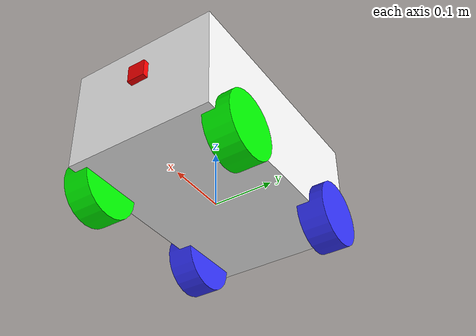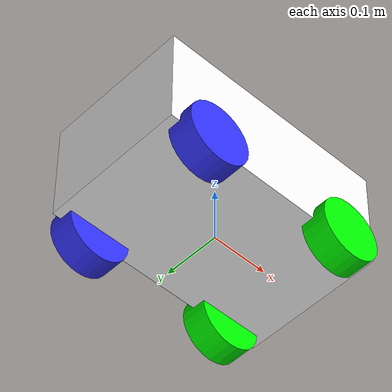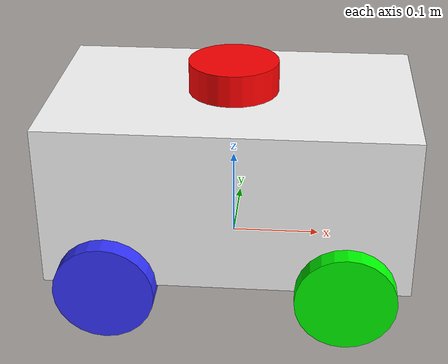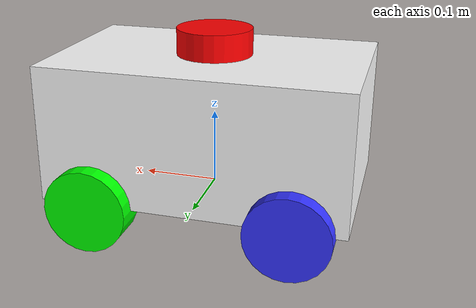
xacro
<?xml version="1.0"?>
<robot xmlns:xacro="http://www.ros.org/wiki/xacro"  name="robot">

    <xacro:include filename="robot_core.xacro" />

    <xacro:include filename="gazebo_control.xacro" />

    <xacro:include filename="camera.xacro" />

    <xacro:include filename="lidar.xacro" />

</robot>

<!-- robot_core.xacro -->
<robot xmlns:xacro="http://www.ros.org/wiki/xacro" >

    <xacro:include filename="inertial_macros.xacro" />

    <material name="white">
        <color rgba="1 1 1 1" />
    </material>

    <material name="orange">
        <color rgba="1 0.3 0.1 1" />
    </material>

    <material name="blue">
        <color rgba="0.2 0.2 1 1" />
    </material>

    <material name="green">
        <color rgba="0 1 0 1" />
    </material>

    <material name="red">
        <color rgba="1 0 0 1" />
    </material>

    <material name="grey">
        <color rgba="0.5 0.5 0.5 1" />
    </material>

    <material name="black">
        <color rgba="0 0 0 1" />
    </material>

    <!-- BASE LINK  -->

    <link name="base_link">
        <static>true</static>
    </link>

    <!-- CHASSIS LINK -->

    <joint name="chassis_joint" type="fixed" >
        <parent link="base_link" />
        <child link="chassis" />
        <origin xyz="-0.2 0 0" />
    </joint>

    <link name="chassis">
        <visual>
            <origin xyz="0.2 0 0.09" />
            <geometry>
                <box size="0.4 0.25 0.18" />
            </geometry>
            <material name="white" />
        </visual>
        <collision>
            <origin xyz="0.2 0 0.09" />
            <geometry>
                <box size="0.4 0.25 0.18" />
            </geometry>
        </collision>
        <xacro:inertial_box mass="5" x="0.4" y="0.25" z="0.18" >
            <origin xyz="0.2 0.125 0.09" rpy="0 0 0" />
        </xacro:inertial_box>
    </link>

    <gazebo reference="chassis" >
        <material>Gazebo/White</material>
    </gazebo>

    <!-- LEFT FRONT WHEEL LINK -->

    <joint name="left_front_wheel_joint" type="continuous" >
        <parent link="base_link" />
        <child link="left_front_wheel" />
        <origin xyz="0.13 0.125 0" rpy="-${pi/2} 0 0" />
        <axis xyz="0 0 1" />
    </joint>

    <link name="left_front_wheel" >
        <visual>
            <geometry>
                <cylinder radius="0.055" length="0.045" />
            </geometry>
            <material name="green" />
        </visual>
        <collision>
            <geometry>
                <cylinder radius="0.055" length="0.045" />
            </geometry>
        </collision>
        <xacro:inertial_cylinder mass="0.1" length="0.045" radius="0.55" >
            <origin xyz="0 0 0" rpy="0 0 0" />
        </xacro:inertial_cylinder>
    </link>

    <gazebo reference="left_front_wheel" >
        <material>Gazebo/Green</material>
        <mu1 value="0.01" />
        <mu2 value="0.01" />
    </gazebo>

    <!-- LEFT BACK WHEEL LINK -->

    <joint name="left_back_wheel_joint" type="continuous" >
        <parent link="base_link" />
        <child link="left_back_wheel" />
        <origin xyz="-0.13 0.125 0" rpy="-${pi/2} 0 0" />
        <axis xyz="0 0 1" />
    </joint>

    <link name="left_back_wheel" >
        <visual>
            <geometry>
                <cylinder radius="0.055" length="0.045" />
            </geometry>
            <material name="blue" />
        </visual>
        <collision>
            <geometry>
                <cylinder radius="0.055" length="0.045" />
            </geometry>
        </collision>
        <xacro:inertial_cylinder mass="0.1" length="0.045" radius="0.55" >
            <origin xyz="0 0 0" rpy="0 0 0" />
        </xacro:inertial_cylinder>
    </link>

    <gazebo reference="left_back_wheel" >
        <material>Gazebo/Blue</material>
     </gazebo>

    <!-- RIGHT FRONT WHEEL LINK -->

    <joint name="right_front_wheel_joint" type="continuous" >
        <parent link="base_link" />
        <child link="right_front_wheel" />
        <origin xyz="0.13 -0.125 0" rpy="${pi/2} 0 0" />
        <axis xyz="0 0 -1" />
    </joint>

    <link name="right_front_wheel" >
        <visual>
            <geometry>
                <cylinder radius="0.055" length="0.045" />
            </geometry>
            <material name="green" />
        </visual>
        <collision>
            <geometry>
                <cylinder radius="0.055" length="0.045" />
            </geometry>
        </collision>
        <xacro:inertial_cylinder mass="0.1" length="0.045" radius="0.55" >
            <origin xyz="0 0 0" rpy="0 0 0" />
        </xacro:inertial_cylinder>
    </link>

    <gazebo reference="right_front_wheel" >
        <material>Gazebo/Green</material>
        <mu1 value="0.01" />
        <mu2 value="0.01" />
    </gazebo>

    <!-- RIGHT BACK WHEEL LINK -->

    <joint name="right_back_wheel_joint" type="continuous" >
        <parent link="base_link" />
        <child link="right_back_wheel" />
        <origin xyz="-0.13 -0.125 0" rpy="${pi/2} 0 0" />
        <axis xyz="0 0 -1" />
    </joint>

    <link name="right_back_wheel" >
        <visual>
            <geometry>
                <cylinder radius="0.055" length="0.045" />
            </geometry>
            <material name="blue" />
        </visual>
        <collision>
            <geometry>
                <cylinder radius="0.055" length="0.045" />
            </geometry>
        </collision>
        <xacro:inertial_cylinder mass="0.1" length="0.045" radius="0.55" >
            <origin xyz="0 0 0" rpy="0 0 0" />
        </xacro:inertial_cylinder>
    </link>

    <gazebo reference="right_back_wheel" >
        <material>Gazebo/Blue</material>
    </gazebo>

</robot>

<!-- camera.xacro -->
<robot xmlns:xacro="http://www.ros.org/wiki/xacro" >

    <joint name="camera_joint" type="fixed">
        <parent link="chassis"/>
        <child link="camera_link"/>
        <origin xyz="0.405 0 0.12" rpy="0 0 0"/>
    </joint>

    <link name="camera_link">
        <visual>
            <geometry>
                <box size="0.01 0.03 0.03"/>
            </geometry>
            <material name="red"/>
        </visual>
    </link>

    <joint name="camera_optical_joint" type="fixed">
        <parent link="camera_link"/>
        <child link="camera_link_optical"/>
        <origin xyz="0 0 0" rpy="${-pi/2} 0 ${-pi/2}"/>
    </joint>

    <link name="camera_link_optical"></link>

    <gazebo reference="camera_link">
        <material>Gazebo/Grey</material>

        <sensor name="camera" type="camera" >
            <pose>0 0 0 0 0 0</pose>
            <visualize>true</visualize>
            <update_rate>10</update_rate>
            <camera>
                <horizontal_fov>1.45</horizontal_fov>
                <image>
                    <format>R8G8B8</format>
                    <width>640</width>
                    <height>480</height>
                </image>
                <clip>
                    <near>0.05</near>
                    <far>10</far>
                </clip>
            </camera>

            <plugin name="camera_controller" filename="libgazebo_ros_camera.so">
                <frameName>camera_link_optical</frameName>
            </plugin>
        </sensor>
    </gazebo>

</robot>

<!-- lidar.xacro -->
<robot xmlns:xacro="http://www.ros.org/wiki/xacro" >

    <joint name="lidar_joint" type="fixed" >
        <parent link="chassis" />
        <child link="lidar_frame" />
        <origin xyz="0.2 0 0.19" rpy="0 0 0" />
    </joint>

    <link name="lidar_frame">
        <visual>
            <geometry>
                <cylinder length="0.05" radius="0.05" />
            </geometry>
            <material name="red" />
        </visual>
        <collision>
            <origin xyz="0 0 0" />
            <geometry>
                <cylinder length="0.05" radius="0.05" />
            </geometry>
        </collision>
        <xacro:inertial_cylinder mass="0.1" length="0.05" radius="0.05" >
            <origin xyz="0 0 0" rpy="0 0 0" />
        </xacro:inertial_cylinder>
    </link>

    <gazebo reference="lidar_frame" >
        <material>Gazebo/Red</material>

        <sensor name="lidar" type="ray" >
            <pose>0 0 0 0 0 0</pose>
            <visualize>true</visualize>
            <update_rate>10</update_rate>
            <ray>
                <scan>
                    <horizontal>
                        <samples>360</samples>
                        <resolution>1</resolution>
                        <min_angle>-3.14</min_angle>
                        <max_angle>3.14</max_angle>
                    </horizontal>
                </scan>
                <range>
                    <min>0.3</min>
                    <max>8</max>
                    <resolution>0.01</resolution>
                </range>
            </ray>
            <plugin name="lidar_controller" filename="libgazebo_ros_ray_sensor.so">
                <ros>
                    <argument>~/out:=scan</argument>
                </ros>
                <topicName>scan</topicName>
                <frameName>lidar_frame</frameName>
                <output_type>sensor_msgs/LaserScan</output_type>
            </plugin>
        </sensor>
    </gazebo>

</robot>
